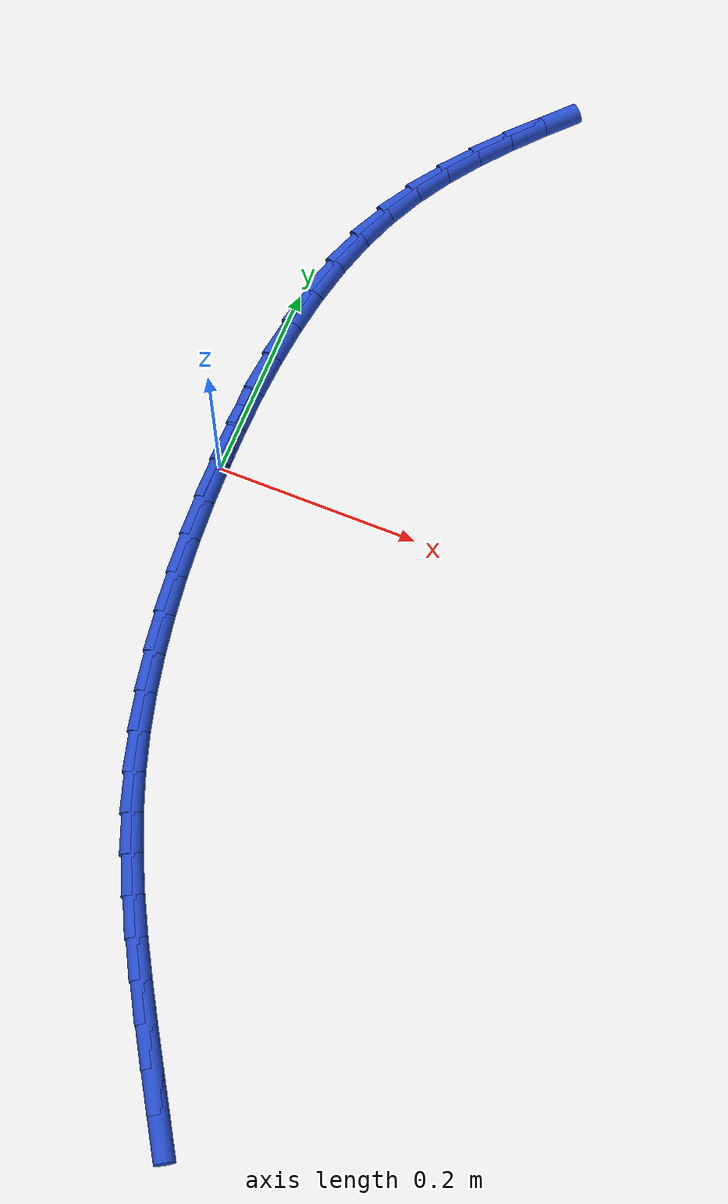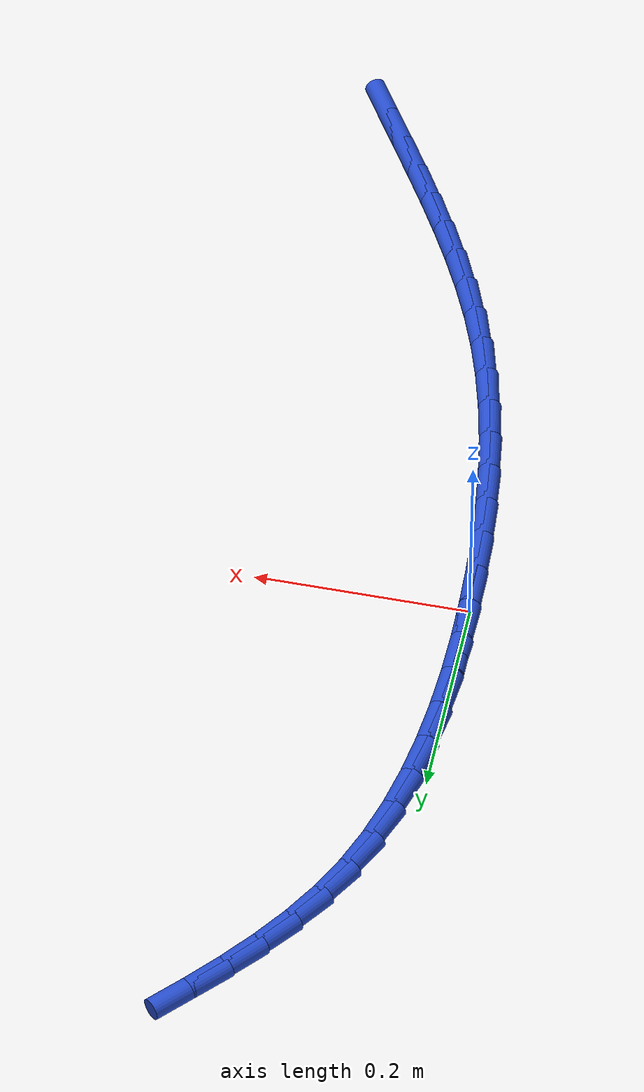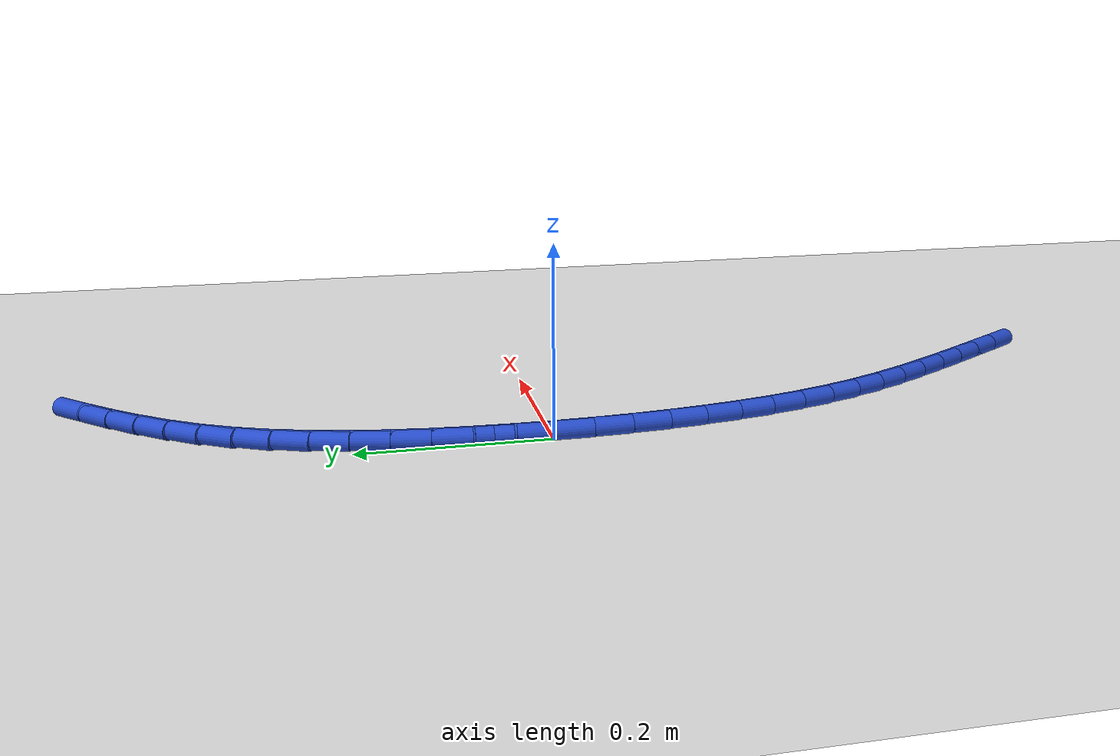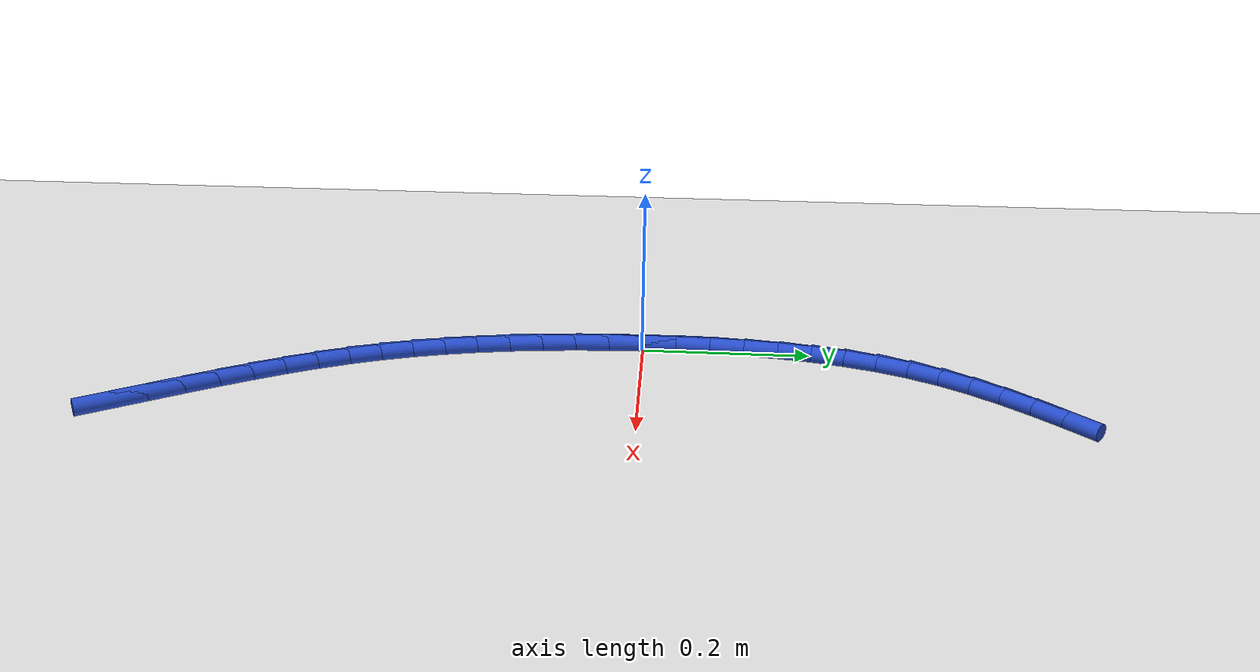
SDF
<sdf version="1.6">
 <world name="default">
  <model name="ground_plane">
   <static>1</static>
   <link name="link">
    <collision name="collision">
     <geometry><plane><normal>0 0 1</normal><size>100 100</size></plane></geometry>
     <surface><friction><ode><mu>100</mu><mu2>50</mu2></ode></friction></surface>
    </collision>
    <visual name="visual">
     <cast_shadows>0</cast_shadows>
     <geometry><plane><normal>0 0 1</normal><size>100 100</size></plane></geometry>
     <material>
      <script><uri>file://media/materials/scripts/gazebo.material</uri><name>Gazebo/WhiteGlow</name></script>
     </material>
    </visual>
   </link>
  </model>
  <model name="line">
   <link name="link_0">
    <pose>7.37257477290143e-18 -1.1102230246251565e-16 0.01 0 1.57 -1.564874342488282</pose>
    <collision name="collision">
     <geometry><cylinder><radius>0.01</radius><length>0.08</length></cylinder></geometry>
    </collision>
    <visual name="visual">
     <material>
      <script><name>Gazebo/Blue</name><uri>file://media/materials/scripts/gazebo.material</uri></script>
     </material>
     <geometry><cylinder><radius>0.01</radius><length>0.08</length></cylinder></geometry>
    </visual>
   </link>
   <link name="link_1">
    <pose>-0.00024126828564227624 0.040740645825106704 0.01 0 1.57 1.5445311652463174</pose>
    <collision name="collision">
     <geometry><cylinder><radius>0.01</radius><length>0.08</length></cylinder></geometry>
    </collision>
    <visual name="visual">
     <material>
      <script><name>Gazebo/Blue</name><uri>file://media/materials/scripts/gazebo.material</uri></script>
     </material>
     <geometry><cylinder><radius>0.01</radius><length>0.08</length></cylinder></geometry>
    </visual>
   </link>
   <link name="link_2">
    <pose>0.0008283967256588699 0.08145690128900905 0.01 0 1.57 1.5062413362161842</pose>
    <collision name="collision">
     <geometry><cylinder><radius>0.01</radius><length>0.08</length></cylinder></geometry>
    </collision>
    <visual name="visual">
     <material>
      <script><name>Gazebo/Blue</name><uri>file://media/materials/scripts/gazebo.material</uri></script>
     </material>
     <geometry><cylinder><radius>0.01</radius><length>0.08</length></cylinder></geometry>
    </visual>
   </link>
   <link name="link_3">
    <pose>0.003442619523283141 0.12189669234528841 0.01 0 1.57 1.4611831468869003</pose>
    <collision name="collision">
     <geometry><cylinder><radius>0.01</radius><length>0.08</length></cylinder></geometry>
    </collision>
    <visual name="visual">
     <material>
      <script><name>Gazebo/Blue</name><uri>file://media/materials/scripts/gazebo.material</uri></script>
     </material>
     <geometry><cylinder><radius>0.01</radius><length>0.08</length></cylinder></geometry>
    </visual>
   </link>
   <link name="link_4">
    <pose>0.007835024596610226 0.16180794494752615 0.01 0 1.57 1.4085722016254905</pose>
    <collision name="collision">
     <geometry><cylinder><radius>0.01</radius><length>0.08</length></cylinder></geometry>
    </collision>
    <visual name="visual">
     <material>
      <script><name>Gazebo/Blue</name><uri>file://media/materials/scripts/gazebo.material</uri></script>
     </material>
     <geometry><cylinder><radius>0.01</radius><length>0.08</length></cylinder></geometry>
    </visual>
   </link>
   <link name="link_5">
    <pose>0.014239236435019828 0.20093858504930384 0.01 0 1.57 1.3475439360149963</pose>
    <collision name="collision">
     <geometry><cylinder><radius>0.01</radius><length>0.08</length></cylinder></geometry>
    </collision>
    <visual name="visual">
     <material>
      <script><name>Gazebo/Blue</name><uri>file://media/materials/scripts/gazebo.material</uri></script>
     </material>
     <geometry><cylinder><radius>0.01</radius><length>0.08</length></cylinder></geometry>
    </visual>
   </link>
   <link name="link_6">
    <pose>0.02288887952789164 0.23903653860420296 0.01 0 1.57 1.2772290212839037</pose>
    <collision name="collision">
     <geometry><cylinder><radius>0.01</radius><length>0.08</length></cylinder></geometry>
    </collision>
    <visual name="visual">
     <material>
      <script><name>Gazebo/Blue</name><uri>file://media/materials/scripts/gazebo.material</uri></script>
     </material>
     <geometry><cylinder><radius>0.01</radius><length>0.08</length></cylinder></geometry>
    </visual>
   </link>
   <link name="link_7">
    <pose>0.03401757836460534 0.2758497315658047 0.01 0 1.57 1.1968849304573805</pose>
    <collision name="collision">
     <geometry><cylinder><radius>0.01</radius><length>0.08</length></cylinder></geometry>
    </collision>
    <visual name="visual">
     <material>
      <script><name>Gazebo/Blue</name><uri>file://media/materials/scripts/gazebo.material</uri></script>
     </material>
     <geometry><cylinder><radius>0.01</radius><length>0.08</length></cylinder></geometry>
    </visual>
   </link>
   <link name="link_8">
    <pose>0.04785895743454065 0.31112608988769097 0.01 0 1.57 1.1069030191502465</pose>
    <collision name="collision">
     <geometry><cylinder><radius>0.01</radius><length>0.08</length></cylinder></geometry>
    </collision>
    <visual name="visual">
     <material>
      <script><name>Gazebo/Blue</name><uri>file://media/materials/scripts/gazebo.material</uri></script>
     </material>
     <geometry><cylinder><radius>0.01</radius><length>0.08</length></cylinder></geometry>
    </visual>
   </link>
   <link name="link_9">
    <pose>0.0646235438690067 0.34463467769089656 0.01 0 1.57 1.0198124413094176</pose>
    <collision name="collision">
     <geometry><cylinder><radius>0.01</radius><length>0.08</length></cylinder></geometry>
    </collision>
    <visual name="visual">
     <material>
      <script><name>Gazebo/Blue</name><uri>file://media/materials/scripts/gazebo.material</uri></script>
     </material>
     <geometry><cylinder><radius>0.01</radius><length>0.08</length></cylinder></geometry>
    </visual>
   </link>
   <link name="link_10">
    <pose>0.08417829868264215 0.3764589828536429 0.01 0 1.57 0.9464721863749267</pose>
    <collision name="collision">
     <geometry><cylinder><radius>0.01</radius><length>0.08</length></cylinder></geometry>
    </collision>
    <visual name="visual">
     <material>
      <script><name>Gazebo/Blue</name><uri>file://media/materials/scripts/gazebo.material</uri></script>
     </material>
     <geometry><cylinder><radius>0.01</radius><length>0.08</length></cylinder></geometry>
    </visual>
   </link>
   <link name="link_11">
    <pose>0.1061267438887049 0.4069235865301882 0.01 0 1.57 0.8880197006408748</pose>
    <collision name="collision">
     <geometry><cylinder><radius>0.01</radius><length>0.08</length></cylinder></geometry>
    </collision>
    <visual name="visual">
     <material>
      <script><name>Gazebo/Blue</name><uri>file://media/materials/scripts/gazebo.material</uri></script>
     </material>
     <geometry><cylinder><radius>0.01</radius><length>0.08</length></cylinder></geometry>
    </visual>
   </link>
   <link name="link_12">
    <pose>0.1300656846701461 0.4363592169624078 0.01 0 1.57 0.8445059594094365</pose>
    <collision name="collision">
     <geometry><cylinder><radius>0.01</radius><length>0.08</length></cylinder></geometry>
    </collision>
    <visual name="visual">
     <material>
      <script><name>Gazebo/Blue</name><uri>file://media/materials/scripts/gazebo.material</uri></script>
     </material>
     <geometry><cylinder><radius>0.01</radius><length>0.08</length></cylinder></geometry>
    </visual>
   </link>
   <link name="link_13">
    <pose>0.155591926209917 0.46509660239217726 0.01 0 1.57 0.8155182214624811</pose>
    <collision name="collision">
     <geometry><cylinder><radius>0.01</radius><length>0.08</length></cylinder></geometry>
    </collision>
    <visual name="visual">
     <material>
      <script><name>Gazebo/Blue</name><uri>file://media/materials/scripts/gazebo.material</uri></script>
     </material>
     <geometry><cylinder><radius>0.01</radius><length>0.08</length></cylinder></geometry>
    </visual>
   </link>
   <link name="link_174">
    <pose>0.19360942770672243 -0.5856096838730647 0.01 0 1.57 -1.0239565907985593</pose>
    <collision name="collision">
     <geometry><cylinder><radius>0.01</radius><length>0.08</length></cylinder></geometry>
    </collision>
    <visual name="visual">
     <material>
      <script><name>Gazebo/Blue</name><uri>file://media/materials/scripts/gazebo.material</uri></script>
     </material>
     <geometry><cylinder><radius>0.01</radius><length>0.08</length></cylinder></geometry>
    </visual>
   </link>
   <link name="link_175">
    <pose>0.17227078332515713 -0.5505573564084505 0.01 0 1.57 -1.0262163271993126</pose>
    <collision name="collision">
     <geometry><cylinder><radius>0.01</radius><length>0.08</length></cylinder></geometry>
    </collision>
    <visual name="visual">
     <material>
      <script><name>Gazebo/Blue</name><uri>file://media/materials/scripts/gazebo.material</uri></script>
     </material>
     <geometry><cylinder><radius>0.01</radius><length>0.08</length></cylinder></geometry>
    </visual>
   </link>
   <link name="link_176">
    <pose>0.1514607895384027 -0.5161988627526419 0.01 0 1.57 -1.036306436568371</pose>
    <collision name="collision">
     <geometry><cylinder><radius>0.01</radius><length>0.08</length></cylinder></geometry>
    </collision>
    <visual name="visual">
     <material>
      <script><name>Gazebo/Blue</name><uri>file://media/materials/scripts/gazebo.material</uri></script>
     </material>
     <geometry><cylinder><radius>0.01</radius><length>0.08</length></cylinder></geometry>
    </visual>
   </link>
   <link name="link_177">
    <pose>0.1313825436651968 -0.4822808572278352 0.01 0 1.57 -1.0545912921965634</pose>
    <collision name="collision">
     <geometry><cylinder><radius>0.01</radius><length>0.08</length></cylinder></geometry>
    </collision>
    <visual name="visual">
     <material>
      <script><name>Gazebo/Blue</name><uri>file://media/materials/scripts/gazebo.material</uri></script>
     </material>
     <geometry><cylinder><radius>0.01</radius><length>0.08</length></cylinder></geometry>
    </visual>
   </link>
   <link name="link_178">
    <pose>0.11223914302427711 -0.44854999415622665 0.01 0 1.57 -1.0812916259719285</pose>
    <collision name="collision">
     <geometry><cylinder><radius>0.01</radius><length>0.08</length></cylinder></geometry>
    </collision>
    <visual name="visual">
     <material>
      <script><name>Gazebo/Blue</name><uri>file://media/materials/scripts/gazebo.material</uri></script>
     </material>
     <geometry><cylinder><radius>0.01</radius><length>0.08</length></cylinder></geometry>
    </visual>
   </link>
   <link name="link_179">
    <pose>0.09423368493438172 -0.4147529278600134 0.01 0 1.57 -1.116427610229509</pose>
    <collision name="collision">
     <geometry><cylinder><radius>0.01</radius><length>0.08</length></cylinder></geometry>
    </collision>
    <visual name="visual">
     <material>
      <script><name>Gazebo/Blue</name><uri>file://media/materials/scripts/gazebo.material</uri></script>
     </material>
     <geometry><cylinder><radius>0.01</radius><length>0.08</length></cylinder></geometry>
    </visual>
   </link>
   <link name="link_180">
    <pose>0.07756926671424755 -0.3806363126613902 0.01 0 1.57 -1.1597508522209408</pose>
    <collision name="collision">
     <geometry><cylinder><radius>0.01</radius><length>0.08</length></cylinder></geometry>
    </collision>
    <visual name="visual">
     <material>
      <script><name>Gazebo/Blue</name><uri>file://media/materials/scripts/gazebo.material</uri></script>
     </material>
     <geometry><cylinder><radius>0.01</radius><length>0.08</length></cylinder></geometry>
    </visual>
   </link>
   <link name="link_181">
    <pose>0.062448985682612645 -0.3459468028825542 0.01 0 1.57 -1.2105666019587977</pose>
    <collision name="collision">
     <geometry><cylinder><radius>0.01</radius><length>0.08</length></cylinder></geometry>
    </collision>
    <visual name="visual">
     <material>
      <script><name>Gazebo/Blue</name><uri>file://media/materials/scripts/gazebo.material</uri></script>
     </material>
     <geometry><cylinder><radius>0.01</radius><length>0.08</length></cylinder></geometry>
    </visual>
   </link>
   <link name="link_182">
    <pose>0.049072802233222926 -0.31043466809067594 0.01 0 1.57 -1.2637466985698835</pose>
    <collision name="collision">
     <geometry><cylinder><radius>0.01</radius><length>0.08</length></cylinder></geometry>
    </collision>
    <visual name="visual">
     <material>
      <script><name>Gazebo/Blue</name><uri>file://media/materials/scripts/gazebo.material</uri></script>
     </material>
     <geometry><cylinder><radius>0.01</radius><length>0.08</length></cylinder></geometry>
    </visual>
   </link>
   <link name="link_183">
    <pose>0.03751764426540005 -0.27399197040719636 0.01 0 1.57 -1.313401190504607</pose>
    <collision name="collision">
     <geometry><cylinder><radius>0.01</radius><length>0.08</length></cylinder></geometry>
    </collision>
    <visual name="visual">
     <material>
      <script><name>Gazebo/Blue</name><uri>file://media/materials/scripts/gazebo.material</uri></script>
     </material>
     <geometry><cylinder><radius>0.01</radius><length>0.08</length></cylinder></geometry>
    </visual>
   </link>
   <link name="link_184">
    <pose>0.0276999858500197 -0.2366956918666606 0.01 0 1.57 -1.3592342400209243</pose>
    <collision name="collision">
     <geometry><cylinder><radius>0.01</radius><length>0.08</length></cylinder></geometry>
    </collision>
    <visual name="visual">
     <material>
      <script><name>Gazebo/Blue</name><uri>file://media/materials/scripts/gazebo.material</uri></script>
     </material>
     <geometry><cylinder><radius>0.01</radius><length>0.08</length></cylinder></geometry>
    </visual>
   </link>
   <link name="link_185">
    <pose>0.019525514023527726 -0.19863524635075996 0.01 0 1.57 -1.4013872824448788</pose>
    <collision name="collision">
     <geometry><cylinder><radius>0.01</radius><length>0.08</length></cylinder></geometry>
    </collision>
    <visual name="visual">
     <material>
      <script><name>Gazebo/Blue</name><uri>file://media/materials/scripts/gazebo.material</uri></script>
     </material>
     <geometry><cylinder><radius>0.01</radius><length>0.08</length></cylinder></geometry>
    </visual>
   </link>
   <link name="link_186">
    <pose>0.012899915822370168 -0.15990004774118735 0.01 0 1.57 -1.4400368650570978</pose>
    <collision name="collision">
     <geometry><cylinder><radius>0.01</radius><length>0.08</length></cylinder></geometry>
    </collision>
    <visual name="visual">
     <material>
      <script><name>Gazebo/Blue</name><uri>file://media/materials/scripts/gazebo.material</uri></script>
     </material>
     <geometry><cylinder><radius>0.01</radius><length>0.08</length></cylinder></geometry>
    </visual>
   </link>
   <link name="link_187">
    <pose>0.00772887828299263 -0.12057950991963279 0.01 0 1.57 -1.4753780696280074</pose>
    <collision name="collision">
     <geometry><cylinder><radius>0.01</radius><length>0.08</length></cylinder></geometry>
    </collision>
    <visual name="visual">
     <material>
      <script><name>Gazebo/Blue</name><uri>file://media/materials/scripts/gazebo.material</uri></script>
     </material>
     <geometry><cylinder><radius>0.01</radius><length>0.08</length></cylinder></geometry>
    </visual>
   </link>
   <link name="link_188">
    <pose>0.003918088441841162 -0.0807630467677889 0.01 0 1.57 -1.5076118497582527</pose>
    <collision name="collision">
     <geometry><cylinder><radius>0.01</radius><length>0.08</length></cylinder></geometry>
    </collision>
    <visual name="visual">
     <material>
      <script><name>Gazebo/Blue</name><uri>file://media/materials/scripts/gazebo.material</uri></script>
     </material>
     <geometry><cylinder><radius>0.01</radius><length>0.08</length></cylinder></geometry>
    </visual>
   </link>
   <link name="link_189">
    <pose>0.0013732333353616523 -0.04054007216734738 0.01 0 1.57 -1.5369357932168524</pose>
    <collision name="collision">
     <geometry><cylinder><radius>0.01</radius><length>0.08</length></cylinder></geometry>
    </collision>
    <visual name="visual">
     <material>
      <script><name>Gazebo/Blue</name><uri>file://media/materials/scripts/gazebo.material</uri></script>
     </material>
     <geometry><cylinder><radius>0.01</radius><length>0.08</length></cylinder></geometry>
    </visual>
   </link>
   <link name="link_190">
    <pose>-4.7704895589362195e-18 -3.469446951953614e-17 0.01 0 1.57 -1.5635376655232311</pose>
    <collision name="collision">
     <geometry><cylinder><radius>0.01</radius><length>0.08</length></cylinder></geometry>
    </collision>
    <visual name="visual">
     <material>
      <script><name>Gazebo/Blue</name><uri>file://media/materials/scripts/gazebo.material</uri></script>
     </material>
     <geometry><cylinder><radius>0.01</radius><length>0.08</length></cylinder></geometry>
    </visual>
   </link>
   <link name="link_191">
    <pose>-0.0002959245277979212 0.040767755852561344 0.01 0 1.57 -1.563537665523231</pose>
    <collision name="collision">
     <geometry><cylinder><radius>0.01</radius><length>0.08</length></cylinder></geometry>
    </collision>
    <visual name="visual">
     <material>
      <script><name>Gazebo/Blue</name><uri>file://media/materials/scripts/gazebo.material</uri></script>
     </material>
     <geometry><cylinder><radius>0.01</radius><length>0.08</length></cylinder></geometry>
    </visual>
   </link>
  </model>
 </world>
</sdf>
